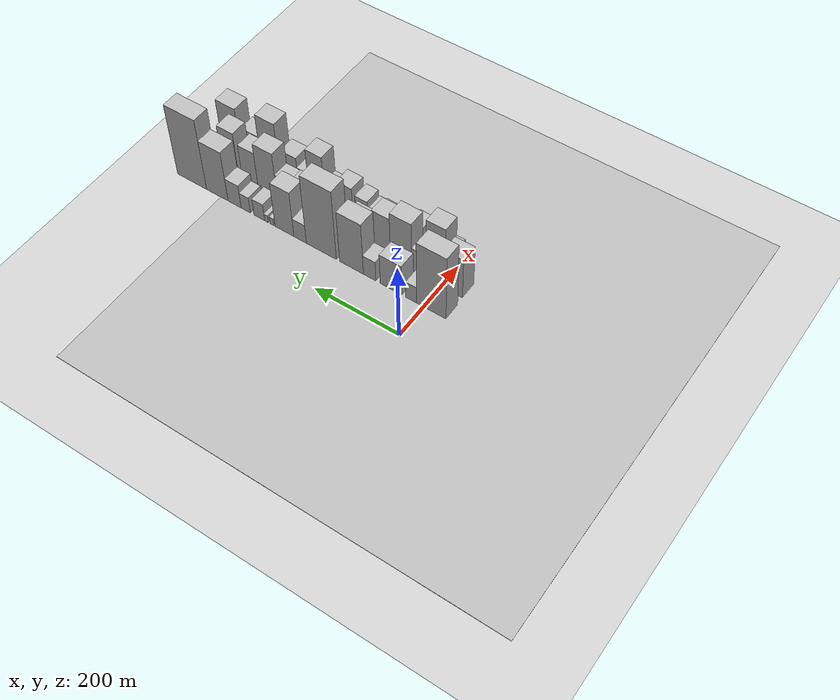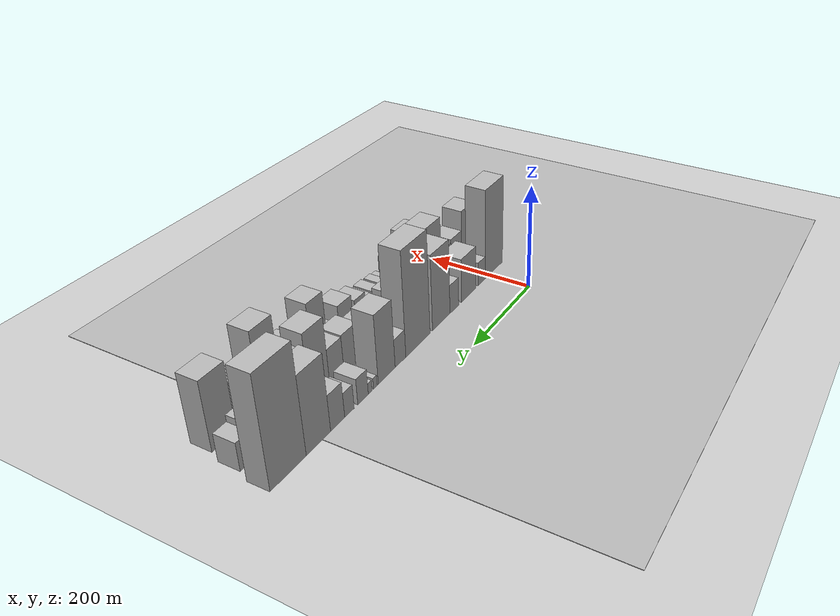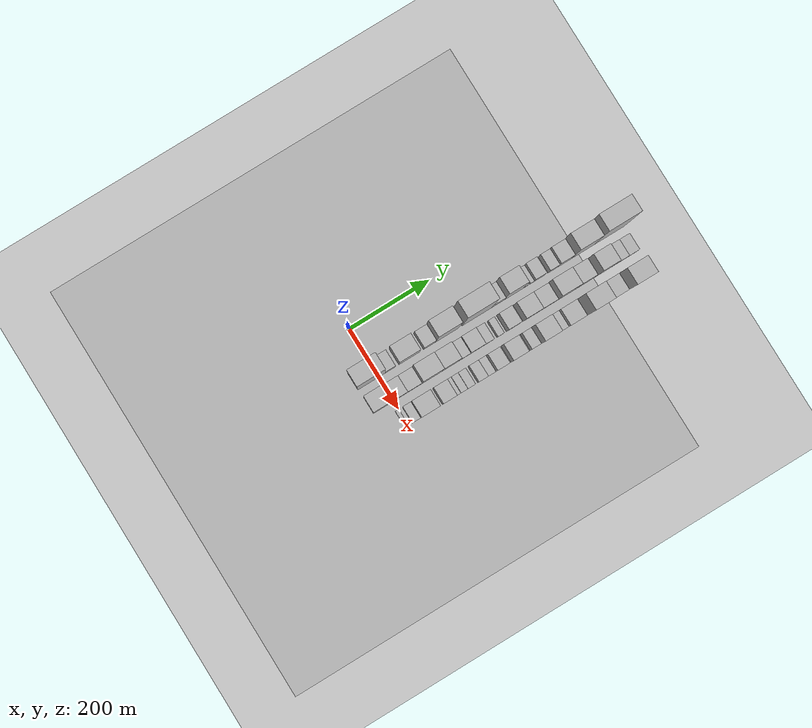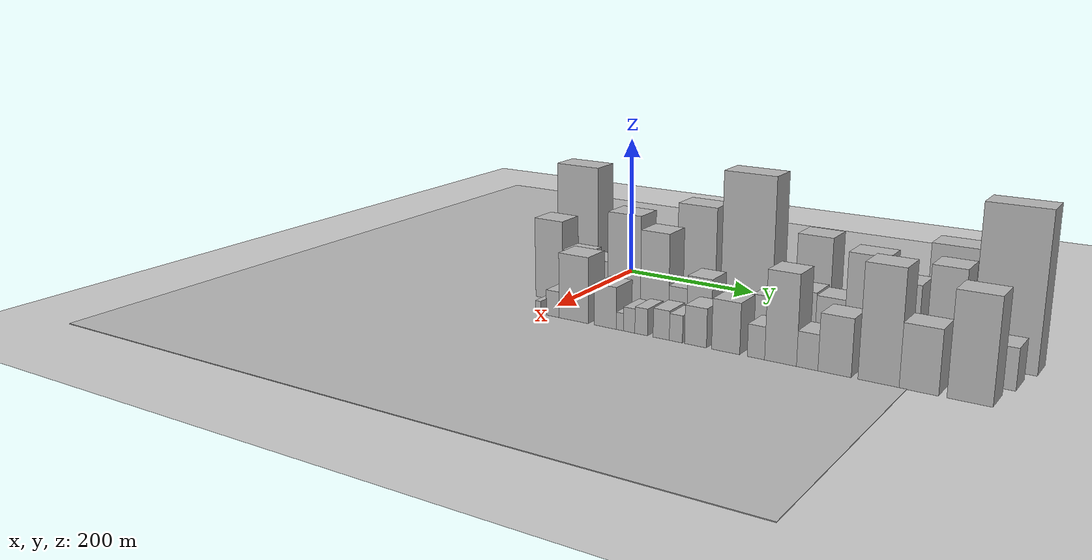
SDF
<sdf version="1.6">
 <world name="default">
  <include><name>ground_plane_1</name><uri>model://HANNAS_ground_plane</uri></include>
  <include>
   <name>ground_plane_2</name>
   <uri>model://HANNAS_ground_plane</uri>
   <pose>100 0 0  0 0 0</pose>
  </include>
  <model name="building_21">
   <static>1</static>
   <pose>100.0000 -17.9185 0 0.000000 0.000000 0.000000</pose>
   <link name="link">
    <pose>0 0 90.00 0 0 0</pose>
    <collision name="collision"><geometry><box><size>40.0000 67.4853 180.0000</size></box></geometry></collision>
    <visual name="visual">
     <cast_shadows>0</cast_shadows>
     <geometry><box><size>40.0000 67.4853 180.0000</size></box></geometry>
     <material>
      <script>
       <uri>model://HANNAS_wall/materials/scripts</uri>
       <uri>model://HANNAS_wall/materials/textures</uri>
       <name>vrc/HANNAS_wall</name>
      </script>
     </material>
    </visual>
   </link>
  </model>
  <model name="building_22">
   <static>1</static>
   <pose>100.0000 28.6319 0 0.000000 0.000000 0.000000</pose>
   <link name="link">
    <pose>0 0 24.00 0 0 0</pose>
    <collision name="collision"><geometry><box><size>40.0000 25.6156 48.0000</size></box></geometry></collision>
    <visual name="visual">
     <cast_shadows>0</cast_shadows>
     <geometry><box><size>40.0000 25.6156 48.0000</size></box></geometry>
     <material>
      <script>
       <uri>model://HANNAS_wall/materials/scripts</uri>
       <uri>model://HANNAS_wall/materials/textures</uri>
       <name>vrc/HANNAS_wall</name>
      </script>
     </material>
    </visual>
   </link>
  </model>
  <model name="building_23">
   <static>1</static>
   <pose>100.0000 76.1748 0 0.000000 0.000000 0.000000</pose>
   <link name="link">
    <pose>0 0 43.50 0 0 0</pose>
    <collision name="collision"><geometry><box><size>40.0000 51.4701 87.0000</size></box></geometry></collision>
    <visual name="visual">
     <cast_shadows>0</cast_shadows>
     <geometry><box><size>40.0000 51.4701 87.0000</size></box></geometry>
     <material>
      <script>
       <uri>model://HANNAS_wall/materials/scripts</uri>
       <uri>model://HANNAS_wall/materials/textures</uri>
       <name>vrc/HANNAS_wall</name>
      </script>
     </material>
    </visual>
   </link>
  </model>
  <model name="building_24">
   <static>1</static>
   <pose>100.0000 126.9499 0 0.000000 0.000000 0.000000</pose>
   <link name="link">
    <pose>0 0 28.50 0 0 0</pose>
    <collision name="collision"><geometry><box><size>40.0000 30.0802 57.0000</size></box></geometry></collision>
    <visual name="visual">
     <cast_shadows>0</cast_shadows>
     <geometry><box><size>40.0000 30.0802 57.0000</size></box></geometry>
     <material>
      <script>
       <uri>model://HANNAS_wall/materials/scripts</uri>
       <uri>model://HANNAS_wall/materials/textures</uri>
       <name>vrc/HANNAS_wall</name>
      </script>
     </material>
    </visual>
   </link>
  </model>
  <model name="building_25">
   <static>1</static>
   <pose>100.0000 170.7572 0 0.000000 0.000000 0.000000</pose>
   <link name="link">
    <pose>0 0 73.50 0 0 0</pose>
    <collision name="collision"><geometry><box><size>40.0000 57.5343 147.0000</size></box></geometry></collision>
    <visual name="visual">
     <cast_shadows>0</cast_shadows>
     <geometry><box><size>40.0000 57.5343 147.0000</size></box></geometry>
     <material>
      <script>
       <uri>model://HANNAS_wall/materials/scripts</uri>
       <uri>model://HANNAS_wall/materials/textures</uri>
       <name>vrc/HANNAS_wall</name>
      </script>
     </material>
    </visual>
   </link>
  </model>
  <model name="building_26">
   <static>1</static>
   <pose>100.0000 244.5713 0 0.000000 0.000000 0.000000</pose>
   <link name="link">
    <pose>0 0 99.00 0 0 0</pose>
    <collision name="collision"><geometry><box><size>40.0000 74.0940 198.0000</size></box></geometry></collision>
    <visual name="visual">
     <cast_shadows>0</cast_shadows>
     <geometry><box><size>40.0000 74.0940 198.0000</size></box></geometry>
     <material>
      <script>
       <uri>model://HANNAS_wall/materials/scripts</uri>
       <uri>model://HANNAS_wall/materials/textures</uri>
       <name>vrc/HANNAS_wall</name>
      </script>
     </material>
    </visual>
   </link>
  </model>
  <model name="building_27">
   <static>1</static>
   <pose>100.0000 297.1448 0 0.000000 0.000000 0.000000</pose>
   <link name="link">
    <pose>0 0 27.00 0 0 0</pose>
    <collision name="collision"><geometry><box><size>40.0000 31.0529 54.0000</size></box></geometry></collision>
    <visual name="visual">
     <cast_shadows>0</cast_shadows>
     <geometry><box><size>40.0000 31.0529 54.0000</size></box></geometry>
     <material>
      <script>
       <uri>model://HANNAS_wall/materials/scripts</uri>
       <uri>model://HANNAS_wall/materials/textures</uri>
       <name>vrc/HANNAS_wall</name>
      </script>
     </material>
    </visual>
   </link>
  </model>
  <model name="building_28">
   <static>1</static>
   <pose>100.0000 336.2664 0 0.000000 0.000000 0.000000</pose>
   <link name="link">
    <pose>0 0 64.50 0 0 0</pose>
    <collision name="collision"><geometry><box><size>40.0000 47.1902 129.0000</size></box></geometry></collision>
    <visual name="visual">
     <cast_shadows>0</cast_shadows>
     <geometry><box><size>40.0000 47.1902 129.0000</size></box></geometry>
     <material>
      <script>
       <uri>model://HANNAS_wall/materials/scripts</uri>
       <uri>model://HANNAS_wall/materials/textures</uri>
       <name>vrc/HANNAS_wall</name>
      </script>
     </material>
    </visual>
   </link>
  </model>
  <model name="building_29">
   <static>1</static>
   <pose>100.0000 367.8762 0 0.000000 0.000000 0.000000</pose>
   <link name="link">
    <pose>0 0 10.50 0 0 0</pose>
    <collision name="collision"><geometry><box><size>40.0000 10.0294 21.0000</size></box></geometry></collision>
    <visual name="visual">
     <cast_shadows>0</cast_shadows>
     <geometry><box><size>40.0000 10.0294 21.0000</size></box></geometry>
     <material>
      <script>
       <uri>model://HANNAS_wall/materials/scripts</uri>
       <uri>model://HANNAS_wall/materials/textures</uri>
       <name>vrc/HANNAS_wall</name>
      </script>
     </material>
    </visual>
   </link>
  </model>
  <model name="building_30">
   <static>1</static>
   <pose>100.0000 381.7923 0 0.000000 0.000000 0.000000</pose>
   <link name="link">
    <pose>0 0 10.50 0 0 0</pose>
    <collision name="collision"><geometry><box><size>40.0000 9.8028 21.0000</size></box></geometry></collision>
    <visual name="visual">
     <cast_shadows>0</cast_shadows>
     <geometry><box><size>40.0000 9.8028 21.0000</size></box></geometry>
     <material>
      <script>
       <uri>model://HANNAS_wall/materials/scripts</uri>
       <uri>model://HANNAS_wall/materials/textures</uri>
       <name>vrc/HANNAS_wall</name>
      </script>
     </material>
    </visual>
   </link>
  </model>
  <model name="building_31">
   <static>1</static>
   <pose>100.0000 400.4193 0 0.000000 0.000000 0.000000</pose>
   <link name="link">
    <pose>0 0 24.00 0 0 0</pose>
    <collision name="collision"><geometry><box><size>40.0000 27.4510 48.0000</size></box></geometry></collision>
    <visual name="visual">
     <cast_shadows>0</cast_shadows>
     <geometry><box><size>40.0000 27.4510 48.0000</size></box></geometry>
     <material>
      <script>
       <uri>model://HANNAS_wall/materials/scripts</uri>
       <uri>model://HANNAS_wall/materials/textures</uri>
       <name>vrc/HANNAS_wall</name>
      </script>
     </material>
    </visual>
   </link>
  </model>
  <model name="building_32">
   <static>1</static>
   <pose>100.0000 435.0461 0 0.000000 0.000000 0.000000</pose>
   <link name="link">
    <pose>0 0 22.50 0 0 0</pose>
    <collision name="collision"><geometry><box><size>40.0000 23.8027 45.0000</size></box></geometry></collision>
    <visual name="visual">
     <cast_shadows>0</cast_shadows>
     <geometry><box><size>40.0000 23.8027 45.0000</size></box></geometry>
     <material>
      <script>
       <uri>model://HANNAS_wall/materials/scripts</uri>
       <uri>model://HANNAS_wall/materials/textures</uri>
       <name>vrc/HANNAS_wall</name>
      </script>
     </material>
    </visual>
   </link>
  </model>
  <model name="building_33">
   <static>1</static>
   <pose>100.0000 464.0478 0 0.000000 0.000000 0.000000</pose>
   <link name="link">
    <pose>0 0 33.00 0 0 0</pose>
    <collision name="collision"><geometry><box><size>40.0000 34.2007 66.0000</size></box></geometry></collision>
    <visual name="visual">
     <cast_shadows>0</cast_shadows>
     <geometry><box><size>40.0000 34.2007 66.0000</size></box></geometry>
     <material>
      <script>
       <uri>model://HANNAS_wall/materials/scripts</uri>
       <uri>model://HANNAS_wall/materials/textures</uri>
       <name>vrc/HANNAS_wall</name>
      </script>
     </material>
    </visual>
   </link>
  </model>
  <model name="building_34">
   <static>1</static>
   <pose>100.0000 509.3301 0 0.000000 0.000000 0.000000</pose>
   <link name="link">
    <pose>0 0 70.50 0 0 0</pose>
    <collision name="collision"><geometry><box><size>40.0000 56.3638 141.0000</size></box></geometry></collision>
    <visual name="visual">
     <cast_shadows>0</cast_shadows>
     <geometry><box><size>40.0000 56.3638 141.0000</size></box></geometry>
     <material>
      <script>
       <uri>model://HANNAS_wall/materials/scripts</uri>
       <uri>model://HANNAS_wall/materials/textures</uri>
       <name>vrc/HANNAS_wall</name>
      </script>
     </material>
    </visual>
   </link>
  </model>
  <model name="building_35">
   <static>1</static>
   <pose>100.0000 576.3049 0 0.000000 0.000000 0.000000</pose>
   <link name="link">
    <pose>0 0 99.00 0 0 0</pose>
    <collision name="collision"><geometry><box><size>40.0000 77.5858 198.0000</size></box></geometry></collision>
    <visual name="visual">
     <cast_shadows>0</cast_shadows>
     <geometry><box><size>40.0000 77.5858 198.0000</size></box></geometry>
     <material>
      <script>
       <uri>model://HANNAS_wall/materials/scripts</uri>
       <uri>model://HANNAS_wall/materials/textures</uri>
       <name>vrc/HANNAS_wall</name>
      </script>
     </material>
    </visual>
   </link>
  </model>
  <model name="building_50">
   <static>1</static>
   <pose>160.0000 -27.0523 0 0.000000 0.000000 0.000000</pose>
   <link name="link">
    <pose>0 0 57.00 0 0 0</pose>
    <collision name="collision"><geometry><box><size>40.0000 45.2273 114.0000</size></box></geometry></collision>
    <visual name="visual">
     <cast_shadows>0</cast_shadows>
     <geometry><box><size>40.0000 45.2273 114.0000</size></box></geometry>
     <material>
      <script>
       <uri>model://HANNAS_wall/materials/scripts</uri>
       <uri>model://HANNAS_wall/materials/textures</uri>
       <name>vrc/HANNAS_wall</name>
      </script>
     </material>
    </visual>
   </link>
  </model>
  <model name="building_51">
   <static>1</static>
   <pose>160.0000 14.6700 0 0.000000 0.000000 0.000000</pose>
   <link name="link">
    <pose>0 0 37.50 0 0 0</pose>
    <collision name="collision"><geometry><box><size>40.0000 38.2172 75.0000</size></box></geometry></collision>
    <visual name="visual">
     <cast_shadows>0</cast_shadows>
     <geometry><box><size>40.0000 38.2172 75.0000</size></box></geometry>
     <material>
      <script>
       <uri>model://HANNAS_wall/materials/scripts</uri>
       <uri>model://HANNAS_wall/materials/textures</uri>
       <name>vrc/HANNAS_wall</name>
      </script>
     </material>
    </visual>
   </link>
  </model>
  <model name="building_52">
   <static>1</static>
   <pose>160.0000 51.3456 0 0.000000 0.000000 0.000000</pose>
   <link name="link">
    <pose>0 0 34.50 0 0 0</pose>
    <collision name="collision"><geometry><box><size>40.0000 35.1340 69.0000</size></box></geometry></collision>
    <visual name="visual">
     <cast_shadows>0</cast_shadows>
     <geometry><box><size>40.0000 35.1340 69.0000</size></box></geometry>
     <material>
      <script>
       <uri>model://HANNAS_wall/materials/scripts</uri>
       <uri>model://HANNAS_wall/materials/textures</uri>
       <name>vrc/HANNAS_wall</name>
      </script>
     </material>
    </visual>
   </link>
  </model>
  <model name="building_53">
   <static>1</static>
   <pose>160.0000 94.2192 0 0.000000 0.000000 0.000000</pose>
   <link name="link">
    <pose>0 0 69.00 0 0 0</pose>
    <collision name="collision"><geometry><box><size>40.0000 50.6132 138.0000</size></box></geometry></collision>
    <visual name="visual">
     <cast_shadows>0</cast_shadows>
     <geometry><box><size>40.0000 50.6132 138.0000</size></box></geometry>
     <material>
      <script>
       <uri>model://HANNAS_wall/materials/scripts</uri>
       <uri>model://HANNAS_wall/materials/textures</uri>
       <name>vrc/HANNAS_wall</name>
      </script>
     </material>
    </visual>
   </link>
  </model>
  <model name="building_54">
   <static>1</static>
   <pose>160.0000 140.8424 0 0.000000 0.000000 0.000000</pose>
   <link name="link">
    <pose>0 0 60.00 0 0 0</pose>
    <collision name="collision"><geometry><box><size>40.0000 42.6332 120.0000</size></box></geometry></collision>
    <visual name="visual">
     <cast_shadows>0</cast_shadows>
     <geometry><box><size>40.0000 42.6332 120.0000</size></box></geometry>
     <material>
      <script>
       <uri>model://HANNAS_wall/materials/scripts</uri>
       <uri>model://HANNAS_wall/materials/textures</uri>
       <name>vrc/HANNAS_wall</name>
      </script>
     </material>
    </visual>
   </link>
  </model>
  <model name="building_55">
   <static>1</static>
   <pose>160.0000 175.6386 0 0.000000 0.000000 0.000000</pose>
   <link name="link">
    <pose>0 0 25.50 0 0 0</pose>
    <collision name="collision"><geometry><box><size>40.0000 26.9593 51.0000</size></box></geometry></collision>
    <visual name="visual">
     <cast_shadows>0</cast_shadows>
     <geometry><box><size>40.0000 26.9593 51.0000</size></box></geometry>
     <material>
      <script>
       <uri>model://HANNAS_wall/materials/scripts</uri>
       <uri>model://HANNAS_wall/materials/textures</uri>
       <name>vrc/HANNAS_wall</name>
      </script>
     </material>
    </visual>
   </link>
  </model>
  <model name="building_56">
   <static>1</static>
   <pose>160.0000 206.9822 0 0.000000 0.000000 0.000000</pose>
   <link name="link">
    <pose>0 0 34.50 0 0 0</pose>
    <collision name="collision"><geometry><box><size>40.0000 35.7279 69.0000</size></box></geometry></collision>
    <visual name="visual">
     <cast_shadows>0</cast_shadows>
     <geometry><box><size>40.0000 35.7279 69.0000</size></box></geometry>
     <material>
      <script>
       <uri>model://HANNAS_wall/materials/scripts</uri>
       <uri>model://HANNAS_wall/materials/textures</uri>
       <name>vrc/HANNAS_wall</name>
      </script>
     </material>
    </visual>
   </link>
  </model>
  <model name="building_57">
   <static>1</static>
   <pose>160.0000 236.3442 0 0.000000 0.000000 0.000000</pose>
   <link name="link">
    <pose>0 0 21.00 0 0 0</pose>
    <collision name="collision"><geometry><box><size>40.0000 22.9962 42.0000</size></box></geometry></collision>
    <visual name="visual">
     <cast_shadows>0</cast_shadows>
     <geometry><box><size>40.0000 22.9962 42.0000</size></box></geometry>
     <material>
      <script>
       <uri>model://HANNAS_wall/materials/scripts</uri>
       <uri>model://HANNAS_wall/materials/textures</uri>
       <name>vrc/HANNAS_wall</name>
      </script>
     </material>
    </visual>
   </link>
  </model>
  <model name="building_58">
   <static>1</static>
   <pose>160.0000 265.7897 0 0.000000 0.000000 0.000000</pose>
   <link name="link">
    <pose>0 0 15.00 0 0 0</pose>
    <collision name="collision"><geometry><box><size>40.0000 15.8947 30.0000</size></box></geometry></collision>
    <visual name="visual">
     <cast_shadows>0</cast_shadows>
     <geometry><box><size>40.0000 15.8947 30.0000</size></box></geometry>
     <material>
      <script>
       <uri>model://HANNAS_wall/materials/scripts</uri>
       <uri>model://HANNAS_wall/materials/textures</uri>
       <name>vrc/HANNAS_wall</name>
      </script>
     </material>
    </visual>
   </link>
  </model>
  <model name="building_59">
   <static>1</static>
   <pose>160.0000 298.0213 0 0.000000 0.000000 0.000000</pose>
   <link name="link">
    <pose>0 0 30.00 0 0 0</pose>
    <collision name="collision"><geometry><box><size>40.0000 32.5685 60.0000</size></box></geometry></collision>
    <visual name="visual">
     <cast_shadows>0</cast_shadows>
     <geometry><box><size>40.0000 32.5685 60.0000</size></box></geometry>
     <material>
      <script>
       <uri>model://HANNAS_wall/materials/scripts</uri>
       <uri>model://HANNAS_wall/materials/textures</uri>
       <name>vrc/HANNAS_wall</name>
      </script>
     </material>
    </visual>
   </link>
  </model>
  <model name="building_60">
   <static>1</static>
   <pose>160.0000 344.1115 0 0.000000 0.000000 0.000000</pose>
   <link name="link">
    <pose>0 0 37.50 0 0 0</pose>
    <collision name="collision"><geometry><box><size>40.0000 41.6119 75.0000</size></box></geometry></collision>
    <visual name="visual">
     <cast_shadows>0</cast_shadows>
     <geometry><box><size>40.0000 41.6119 75.0000</size></box></geometry>
     <material>
      <script>
       <uri>model://HANNAS_wall/materials/scripts</uri>
       <uri>model://HANNAS_wall/materials/textures</uri>
       <name>vrc/HANNAS_wall</name>
      </script>
     </material>
    </visual>
   </link>
  </model>
  <model name="building_61">
   <static>1</static>
   <pose>160.0000 383.2145 0 0.000000 0.000000 0.000000</pose>
   <link name="link">
    <pose>0 0 36.00 0 0 0</pose>
    <collision name="collision"><geometry><box><size>40.0000 36.5941 72.0000</size></box></geometry></collision>
    <visual name="visual">
     <cast_shadows>0</cast_shadows>
     <geometry><box><size>40.0000 36.5941 72.0000</size></box></geometry>
     <material>
      <script>
       <uri>model://HANNAS_wall/materials/scripts</uri>
       <uri>model://HANNAS_wall/materials/textures</uri>
       <name>vrc/HANNAS_wall</name>
      </script>
     </material>
    </visual>
   </link>
  </model>
  <model name="building_62">
   <static>1</static>
   <pose>160.0000 425.9093 0 0.000000 0.000000 0.000000</pose>
   <link name="link">
    <pose>0 0 66.00 0 0 0</pose>
    <collision name="collision"><geometry><box><size>40.0000 48.7954 132.0000</size></box></geometry></collision>
    <visual name="visual">
     <cast_shadows>0</cast_shadows>
     <geometry><box><size>40.0000 48.7954 132.0000</size></box></geometry>
     <material>
      <script>
       <uri>model://HANNAS_wall/materials/scripts</uri>
       <uri>model://HANNAS_wall/materials/textures</uri>
       <name>vrc/HANNAS_wall</name>
      </script>
     </material>
    </visual>
   </link>
  </model>
  <model name="building_63">
   <static>1</static>
   <pose>160.0000 470.7696 0 0.000000 0.000000 0.000000</pose>
   <link name="link">
    <pose>0 0 52.50 0 0 0</pose>
    <collision name="collision"><geometry><box><size>40.0000 40.9252 105.0000</size></box></geometry></collision>
    <visual name="visual">
     <cast_shadows>0</cast_shadows>
     <geometry><box><size>40.0000 40.9252 105.0000</size></box></geometry>
     <material>
      <script>
       <uri>model://HANNAS_wall/materials/scripts</uri>
       <uri>model://HANNAS_wall/materials/textures</uri>
       <name>vrc/HANNAS_wall</name>
      </script>
     </material>
    </visual>
   </link>
  </model>
  <model name="building_64">
   <static>1</static>
   <pose>160.0000 520.9337 0 0.000000 0.000000 0.000000</pose>
   <link name="link">
    <pose>0 0 66.00 0 0 0</pose>
    <collision name="collision"><geometry><box><size>40.0000 41.4031 132.0000</size></box></geometry></collision>
    <visual name="visual">
     <cast_shadows>0</cast_shadows>
     <geometry><box><size>40.0000 41.4031 132.0000</size></box></geometry>
     <material>
      <script>
       <uri>model://HANNAS_wall/materials/scripts</uri>
       <uri>model://HANNAS_wall/materials/textures</uri>
       <name>vrc/HANNAS_wall</name>
      </script>
     </material>
    </visual>
   </link>
  </model>
  <model name="building_65">
   <static>1</static>
   <pose>160.0000 559.3681 0 0.000000 0.000000 0.000000</pose>
   <link name="link">
    <pose>0 0 31.50 0 0 0</pose>
    <collision name="collision"><geometry><box><size>40.0000 35.4656 63.0000</size></box></geometry></collision>
    <visual name="visual">
     <cast_shadows>0</cast_shadows>
     <geometry><box><size>40.0000 35.4656 63.0000</size></box></geometry>
     <material>
      <script>
       <uri>model://HANNAS_wall/materials/scripts</uri>
       <uri>model://HANNAS_wall/materials/textures</uri>
       <name>vrc/HANNAS_wall</name>
      </script>
     </material>
    </visual>
   </link>
  </model>
  <model name="building_66">
   <static>1</static>
   <pose>160.0000 591.0056 0 0.000000 0.000000 0.000000</pose>
   <link name="link">
    <pose>0 0 25.50 0 0 0</pose>
    <collision name="collision"><geometry><box><size>40.0000 27.8094 51.0000</size></box></geometry></collision>
    <visual name="visual">
     <cast_shadows>0</cast_shadows>
     <geometry><box><size>40.0000 27.8094 51.0000</size></box></geometry>
     <material>
      <script>
       <uri>model://HANNAS_wall/materials/scripts</uri>
       <uri>model://HANNAS_wall/materials/textures</uri>
       <name>vrc/HANNAS_wall</name>
      </script>
     </material>
    </visual>
   </link>
  </model>
  <model name="building_83">
   <static>1</static>
   <pose>220.0000 -3.9665 0 0.000000 0.000000 0.000000</pose>
   <link name="link">
    <pose>0 0 9.00 0 0 0</pose>
    <collision name="collision"><geometry><box><size>40.0000 8.7246 18.0000</size></box></geometry></collision>
    <visual name="visual">
     <cast_shadows>0</cast_shadows>
     <geometry><box><size>40.0000 8.7246 18.0000</size></box></geometry>
     <material>
      <script>
       <uri>model://HANNAS_wall/materials/scripts</uri>
       <uri>model://HANNAS_wall/materials/textures</uri>
       <name>vrc/HANNAS_wall</name>
      </script>
     </material>
    </visual>
   </link>
  </model>
  <model name="building_84">
   <static>1</static>
   <pose>220.0000 19.6314 0 0.000000 0.000000 0.000000</pose>
   <link name="link">
    <pose>0 0 18.00 0 0 0</pose>
    <collision name="collision"><geometry><box><size>40.0000 20.4711 36.0000</size></box></geometry></collision>
    <visual name="visual">
     <cast_shadows>0</cast_shadows>
     <geometry><box><size>40.0000 20.4711 36.0000</size></box></geometry>
     <material>
      <script>
       <uri>model://HANNAS_wall/materials/scripts</uri>
       <uri>model://HANNAS_wall/materials/textures</uri>
       <name>vrc/HANNAS_wall</name>
      </script>
     </material>
    </visual>
   </link>
  </model>
  <model name="building_85">
   <static>1</static>
   <pose>220.0000 52.6868 0 0.000000 0.000000 0.000000</pose>
   <link name="link">
    <pose>0 0 45.00 0 0 0</pose>
    <collision name="collision"><geometry><box><size>40.0000 45.6397 90.0000</size></box></geometry></collision>
    <visual name="visual">
     <cast_shadows>0</cast_shadows>
     <geometry><box><size>40.0000 45.6397 90.0000</size></box></geometry>
     <material>
      <script>
       <uri>model://HANNAS_wall/materials/scripts</uri>
       <uri>model://HANNAS_wall/materials/textures</uri>
       <name>vrc/HANNAS_wall</name>
      </script>
     </material>
    </visual>
   </link>
  </model>
  <model name="building_86">
   <static>1</static>
   <pose>220.0000 101.4571 0 0.000000 0.000000 0.000000</pose>
   <link name="link">
    <pose>0 0 28.50 0 0 0</pose>
    <collision name="collision"><geometry><box><size>40.0000 33.9010 57.0000</size></box></geometry></collision>
    <visual name="visual">
     <cast_shadows>0</cast_shadows>
     <geometry><box><size>40.0000 33.9010 57.0000</size></box></geometry>
     <material>
      <script>
       <uri>model://HANNAS_wall/materials/scripts</uri>
       <uri>model://HANNAS_wall/materials/textures</uri>
       <name>vrc/HANNAS_wall</name>
      </script>
     </material>
    </visual>
   </link>
  </model>
  <model name="building_87">
   <static>1</static>
   <pose>220.0000 123.8350 0 0.000000 0.000000 0.000000</pose>
   <link name="link">
    <pose>0 0 12.00 0 0 0</pose>
    <collision name="collision"><geometry><box><size>40.0000 10.8549 24.0000</size></box></geometry></collision>
    <visual name="visual">
     <cast_shadows>0</cast_shadows>
     <geometry><box><size>40.0000 10.8549 24.0000</size></box></geometry>
     <material>
      <script>
       <uri>model://HANNAS_wall/materials/scripts</uri>
       <uri>model://HANNAS_wall/materials/textures</uri>
       <name>vrc/HANNAS_wall</name>
      </script>
     </material>
    </visual>
   </link>
  </model>
  <model name="building_88">
   <static>1</static>
   <pose>220.0000 137.6825 0 0.000000 0.000000 0.000000</pose>
   <link name="link">
    <pose>0 0 16.50 0 0 0</pose>
    <collision name="collision"><geometry><box><size>40.0000 16.8400 33.0000</size></box></geometry></collision>
    <visual name="visual">
     <cast_shadows>0</cast_shadows>
     <geometry><box><size>40.0000 16.8400 33.0000</size></box></geometry>
     <material>
      <script>
       <uri>model://HANNAS_wall/materials/scripts</uri>
       <uri>model://HANNAS_wall/materials/textures</uri>
       <name>vrc/HANNAS_wall</name>
      </script>
     </material>
    </visual>
   </link>
  </model>
  <model name="building_89">
   <static>1</static>
   <pose>220.0000 155.4474 0 0.000000 0.000000 0.000000</pose>
   <link name="link">
    <pose>0 0 18.00 0 0 0</pose>
    <collision name="collision"><geometry><box><size>40.0000 18.6898 36.0000</size></box></geometry></collision>
    <visual name="visual">
     <cast_shadows>0</cast_shadows>
     <geometry><box><size>40.0000 18.6898 36.0000</size></box></geometry>
     <material>
      <script>
       <uri>model://HANNAS_wall/materials/scripts</uri>
       <uri>model://HANNAS_wall/materials/textures</uri>
       <name>vrc/HANNAS_wall</name>
      </script>
     </material>
    </visual>
   </link>
  </model>
  <model name="building_90">
   <static>1</static>
   <pose>220.0000 184.4775 0 0.000000 0.000000 0.000000</pose>
   <link name="link">
    <pose>0 0 19.50 0 0 0</pose>
    <collision name="collision"><geometry><box><size>40.0000 23.3703 39.0000</size></box></geometry></collision>
    <visual name="visual">
     <cast_shadows>0</cast_shadows>
     <geometry><box><size>40.0000 23.3703 39.0000</size></box></geometry>
     <material>
      <script>
       <uri>model://HANNAS_wall/materials/scripts</uri>
       <uri>model://HANNAS_wall/materials/textures</uri>
       <name>vrc/HANNAS_wall</name>
      </script>
     </material>
    </visual>
   </link>
  </model>
  <model name="building_91">
   <static>1</static>
   <pose>220.0000 205.4291 0 0.000000 0.000000 0.000000</pose>
   <link name="link">
    <pose>0 0 18.00 0 0 0</pose>
    <collision name="collision"><geometry><box><size>40.0000 18.5329 36.0000</size></box></geometry></collision>
    <visual name="visual">
     <cast_shadows>0</cast_shadows>
     <geometry><box><size>40.0000 18.5329 36.0000</size></box></geometry>
     <material>
      <script>
       <uri>model://HANNAS_wall/materials/scripts</uri>
       <uri>model://HANNAS_wall/materials/textures</uri>
       <name>vrc/HANNAS_wall</name>
      </script>
     </material>
    </visual>
   </link>
  </model>
  <model name="building_92">
   <static>1</static>
   <pose>220.0000 232.9686 0 0.000000 0.000000 0.000000</pose>
   <link name="link">
    <pose>0 0 25.50 0 0 0</pose>
    <collision name="collision"><geometry><box><size>40.0000 30.5461 51.0000</size></box></geometry></collision>
    <visual name="visual">
     <cast_shadows>0</cast_shadows>
     <geometry><box><size>40.0000 30.5461 51.0000</size></box></geometry>
     <material>
      <script>
       <uri>model://HANNAS_wall/materials/scripts</uri>
       <uri>model://HANNAS_wall/materials/textures</uri>
       <name>vrc/HANNAS_wall</name>
      </script>
     </material>
    </visual>
   </link>
  </model>
  <model name="building_93">
   <static>1</static>
   <pose>220.0000 274.2568 0 0.000000 0.000000 0.000000</pose>
   <link name="link">
    <pose>0 0 33.00 0 0 0</pose>
    <collision name="collision"><geometry><box><size>40.0000 38.0305 66.0000</size></box></geometry></collision>
    <visual name="visual">
     <cast_shadows>0</cast_shadows>
     <geometry><box><size>40.0000 38.0305 66.0000</size></box></geometry>
     <material>
      <script>
       <uri>model://HANNAS_wall/materials/scripts</uri>
       <uri>model://HANNAS_wall/materials/textures</uri>
       <name>vrc/HANNAS_wall</name>
      </script>
     </material>
    </visual>
   </link>
  </model>
  <model name="building_94">
   <static>1</static>
   <pose>220.0000 314.6816 0 0.000000 0.000000 0.000000</pose>
   <link name="link">
    <pose>0 0 21.00 0 0 0</pose>
    <collision name="collision"><geometry><box><size>40.0000 22.8189 42.0000</size></box></geometry></collision>
    <visual name="visual">
     <cast_shadows>0</cast_shadows>
     <geometry><box><size>40.0000 22.8189 42.0000</size></box></geometry>
     <material>
      <script>
       <uri>model://HANNAS_wall/materials/scripts</uri>
       <uri>model://HANNAS_wall/materials/textures</uri>
       <name>vrc/HANNAS_wall</name>
      </script>
     </material>
    </visual>
   </link>
  </model>
  <model name="building_95">
   <static>1</static>
   <pose>220.0000 346.5746 0 0.000000 0.000000 0.000000</pose>
   <link name="link">
    <pose>0 0 57.00 0 0 0</pose>
    <collision name="collision"><geometry><box><size>40.0000 40.9672 114.0000</size></box></geometry></collision>
    <visual name="visual">
     <cast_shadows>0</cast_shadows>
     <geometry><box><size>40.0000 40.9672 114.0000</size></box></geometry>
     <material>
      <script>
       <uri>model://HANNAS_wall/materials/scripts</uri>
       <uri>model://HANNAS_wall/materials/textures</uri>
       <name>vrc/HANNAS_wall</name>
      </script>
     </material>
    </visual>
   </link>
  </model>
  <model name="building_96">
   <static>1</static>
   <pose>220.0000 380.4392 0 0.000000 0.000000 0.000000</pose>
   <link name="link">
    <pose>0 0 22.50 0 0 0</pose>
    <collision name="collision"><geometry><box><size>40.0000 26.7619 45.0000</size></box></geometry></collision>
    <visual name="visual">
     <cast_shadows>0</cast_shadows>
     <geometry><box><size>40.0000 26.7619 45.0000</size></box></geometry>
     <material>
      <script>
       <uri>model://HANNAS_wall/materials/scripts</uri>
       <uri>model://HANNAS_wall/materials/textures</uri>
       <name>vrc/HANNAS_wall</name>
      </script>
     </material>
    </visual>
   </link>
  </model>
  <model name="building_97">
   <static>1</static>
   <pose>220.0000 414.1566 0 0.000000 0.000000 0.000000</pose>
   <link name="link">
    <pose>0 0 36.00 0 0 0</pose>
    <collision name="collision"><geometry><box><size>40.0000 40.6729 72.0000</size></box></geometry></collision>
    <visual name="visual">
     <cast_shadows>0</cast_shadows>
     <geometry><box><size>40.0000 40.6729 72.0000</size></box></geometry>
     <material>
      <script>
       <uri>model://HANNAS_wall/materials/scripts</uri>
       <uri>model://HANNAS_wall/materials/textures</uri>
       <name>vrc/HANNAS_wall</name>
      </script>
     </material>
    </visual>
   </link>
  </model>
  <model name="building_98">
   <static>1</static>
   <pose>220.0000 466.6913 0 0.000000 0.000000 0.000000</pose>
   <link name="link">
    <pose>0 0 70.50 0 0 0</pose>
    <collision name="collision"><geometry><box><size>40.0000 48.3966 141.0000</size></box></geometry></collision>
    <visual name="visual">
     <cast_shadows>0</cast_shadows>
     <geometry><box><size>40.0000 48.3966 141.0000</size></box></geometry>
     <material>
      <script>
       <uri>model://HANNAS_wall/materials/scripts</uri>
       <uri>model://HANNAS_wall/materials/textures</uri>
       <name>vrc/HANNAS_wall</name>
      </script>
     </material>
    </visual>
   </link>
  </model>
  <model name="building_99">
   <static>1</static>
   <pose>220.0000 513.3369 0 0.000000 0.000000 0.000000</pose>
   <link name="link">
    <pose>0 0 39.00 0 0 0</pose>
    <collision name="collision"><geometry><box><size>40.0000 44.8946 78.0000</size></box></geometry></collision>
    <visual name="visual">
     <cast_shadows>0</cast_shadows>
     <geometry><box><size>40.0000 44.8946 78.0000</size></box></geometry>
     <material>
      <script>
       <uri>model://HANNAS_wall/materials/scripts</uri>
       <uri>model://HANNAS_wall/materials/textures</uri>
       <name>vrc/HANNAS_wall</name>
      </script>
     </material>
    </visual>
   </link>
  </model>
  <model name="building_100">
   <static>1</static>
   <pose>220.0000 569.9097 0 0.000000 0.000000 0.000000</pose>
   <link name="link">
    <pose>0 0 63.00 0 0 0</pose>
    <collision name="collision"><geometry><box><size>40.0000 50.2510 126.0000</size></box></geometry></collision>
    <visual name="visual">
     <cast_shadows>0</cast_shadows>
     <geometry><box><size>40.0000 50.2510 126.0000</size></box></geometry>
     <material>
      <script>
       <uri>model://HANNAS_wall/materials/scripts</uri>
       <uri>model://HANNAS_wall/materials/textures</uri>
       <name>vrc/HANNAS_wall</name>
      </script>
     </material>
    </visual>
   </link>
  </model>
 </world>
</sdf>
